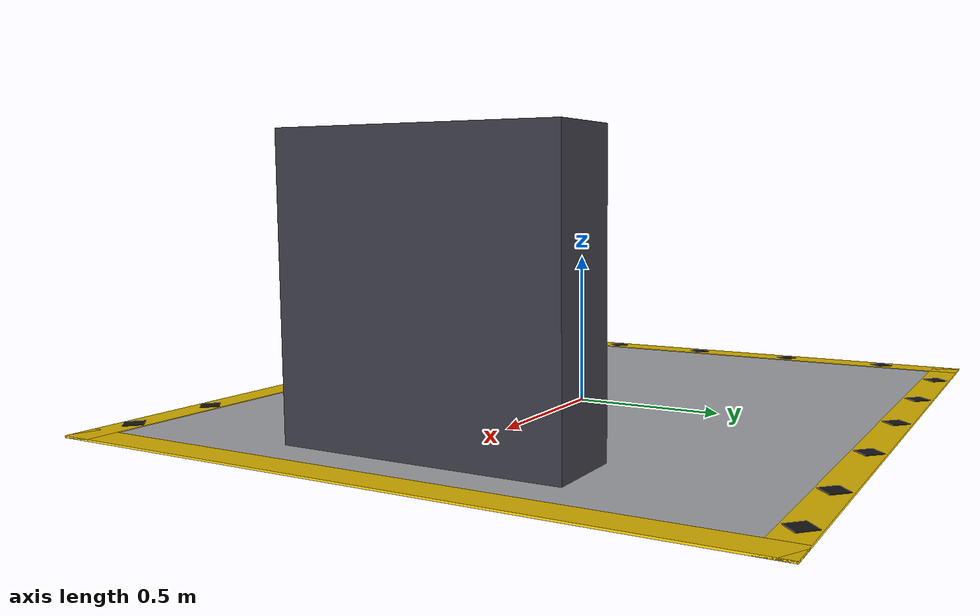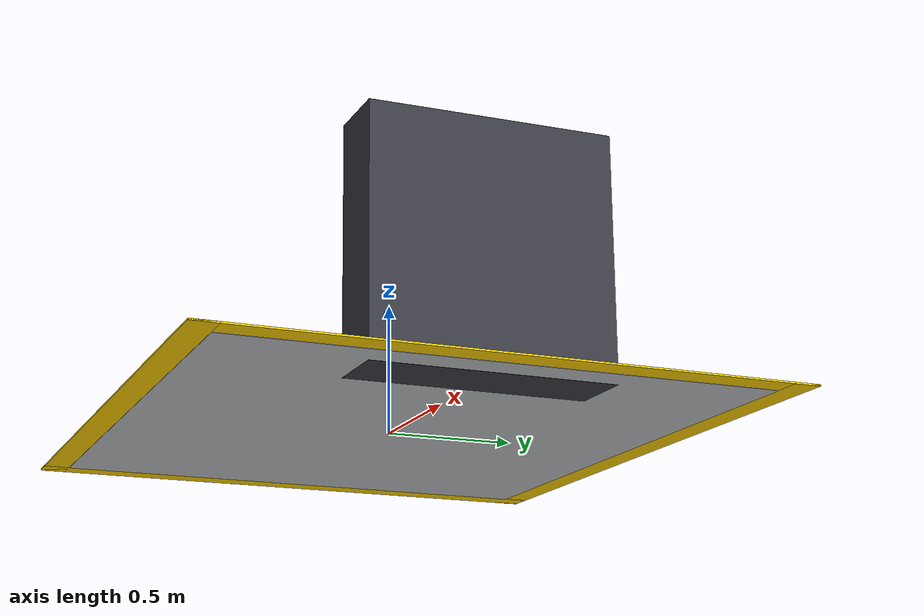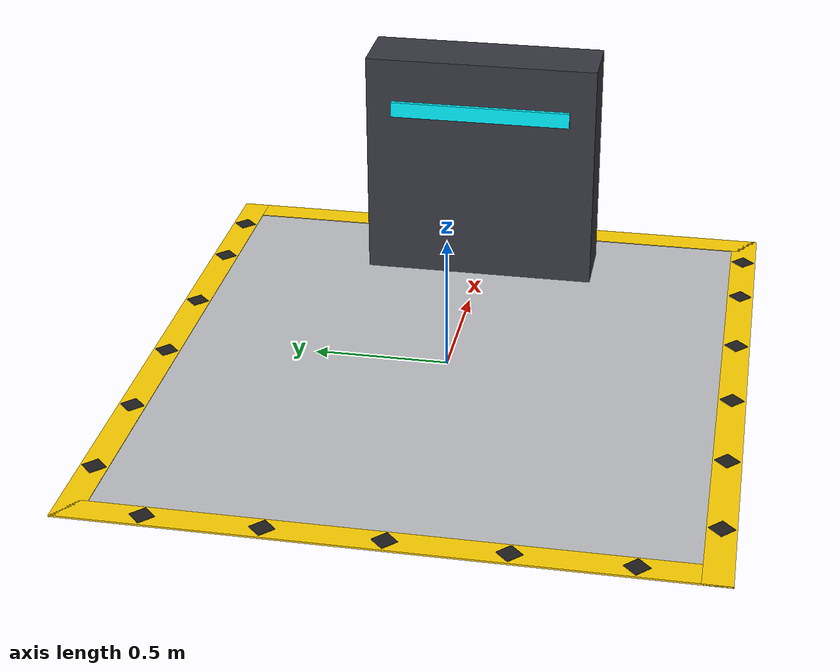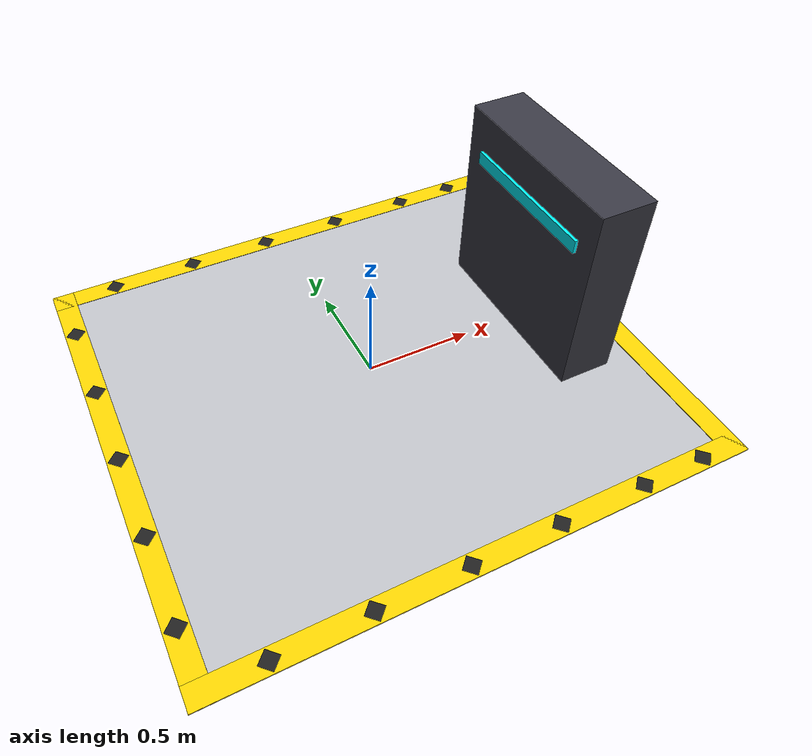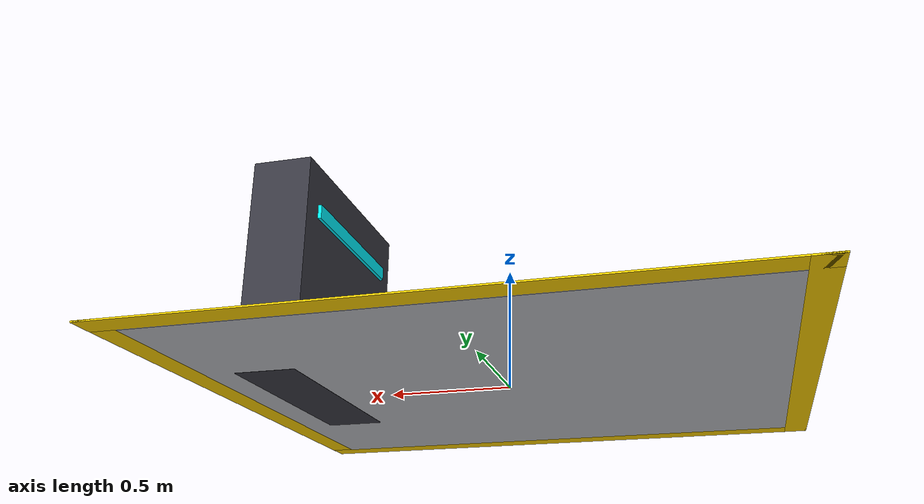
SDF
<?xml version="1.0"?>
<sdf version="1.9">
  <model name="charging_station">
    <static>true</static>
    <link name="pad_link">
      <!-- Main Interior Bay Floor -->
      <visual name="pad_interior">
        <pose>0 0 0.003 0 0 0</pose>
        <geometry><box><size>2.2 2.0 0.005</size></box></geometry>
        <material>
          <ambient>0.68 0.69 0.71 1.0</ambient>
          <diffuse>0.74 0.75 0.77 1.0</diffuse>
        </material>
      </visual>

      <!-- Yellow Base Border Frame -->
      <visual name="base_frame_n"><pose>0 1.05 0.005 0 0 0</pose><geometry><box><size>2.4 0.10 0.006</size></box></geometry><material><ambient>0.95 0.78 0.0 1</ambient><diffuse>1.0 0.82 0.0 1</diffuse></material></visual>
      <visual name="base_frame_s"><pose>0 -1.05 0.005 0 0 0</pose><geometry><box><size>2.4 0.10 0.006</size></box></geometry><material><ambient>0.95 0.78 0.0 1</ambient><diffuse>1.0 0.82 0.0 1</diffuse></material></visual>
      <visual name="base_frame_e"><pose>1.15 0 0.005 0 0 0</pose><geometry><box><size>0.10 2.2 0.006</size></box></geometry><material><ambient>0.95 0.78 0.0 1</ambient><diffuse>1.0 0.82 0.0 1</diffuse></material></visual>
      <visual name="base_frame_w"><pose>-1.15 0 0.005 0 0 0</pose><geometry><box><size>0.10 2.2 0.006</size></box></geometry><material><ambient>0.95 0.78 0.0 1</ambient><diffuse>1.0 0.82 0.0 1</diffuse></material></visual>

      <!-- Black Hazard Stripes at 45° (North Border) -->
      <visual name="hz_n_1"><pose>-0.9 1.05 0.007 0 0 0.7854</pose><geometry><box><size>0.062 0.062 0.006</size></box></geometry><material><ambient>0.08 0.08 0.08 1</ambient><diffuse>0.12 0.12 0.12 1</diffuse></material></visual>
      <visual name="hz_n_2"><pose>-0.5 1.05 0.007 0 0 0.7854</pose><geometry><box><size>0.062 0.062 0.006</size></box></geometry><material><ambient>0.08 0.08 0.08 1</ambient><diffuse>0.12 0.12 0.12 1</diffuse></material></visual>
      <visual name="hz_n_3"><pose>-0.1 1.05 0.007 0 0 0.7854</pose><geometry><box><size>0.062 0.062 0.006</size></box></geometry><material><ambient>0.08 0.08 0.08 1</ambient><diffuse>0.12 0.12 0.12 1</diffuse></material></visual>
      <visual name="hz_n_4"><pose>0.3 1.05 0.007 0 0 0.7854</pose><geometry><box><size>0.062 0.062 0.006</size></box></geometry><material><ambient>0.08 0.08 0.08 1</ambient><diffuse>0.12 0.12 0.12 1</diffuse></material></visual>
      <visual name="hz_n_5"><pose>0.7 1.05 0.007 0 0 0.7854</pose><geometry><box><size>0.062 0.062 0.006</size></box></geometry><material><ambient>0.08 0.08 0.08 1</ambient><diffuse>0.12 0.12 0.12 1</diffuse></material></visual>
      <visual name="hz_n_6"><pose>1.0 1.05 0.007 0 0 0.7854</pose><geometry><box><size>0.062 0.062 0.006</size></box></geometry><material><ambient>0.08 0.08 0.08 1</ambient><diffuse>0.12 0.12 0.12 1</diffuse></material></visual>

      <!-- Black Hazard Stripes at 45° (South Border) -->
      <visual name="hz_s_1"><pose>-0.9 -1.05 0.007 0 0 0.7854</pose><geometry><box><size>0.062 0.062 0.006</size></box></geometry><material><ambient>0.08 0.08 0.08 1</ambient><diffuse>0.12 0.12 0.12 1</diffuse></material></visual>
      <visual name="hz_s_2"><pose>-0.5 -1.05 0.007 0 0 0.7854</pose><geometry><box><size>0.062 0.062 0.006</size></box></geometry><material><ambient>0.08 0.08 0.08 1</ambient><diffuse>0.12 0.12 0.12 1</diffuse></material></visual>
      <visual name="hz_s_3"><pose>-0.1 -1.05 0.007 0 0 0.7854</pose><geometry><box><size>0.062 0.062 0.006</size></box></geometry><material><ambient>0.08 0.08 0.08 1</ambient><diffuse>0.12 0.12 0.12 1</diffuse></material></visual>
      <visual name="hz_s_4"><pose>0.3 -1.05 0.007 0 0 0.7854</pose><geometry><box><size>0.062 0.062 0.006</size></box></geometry><material><ambient>0.08 0.08 0.08 1</ambient><diffuse>0.12 0.12 0.12 1</diffuse></material></visual>
      <visual name="hz_s_5"><pose>0.7 -1.05 0.007 0 0 0.7854</pose><geometry><box><size>0.062 0.062 0.006</size></box></geometry><material><ambient>0.08 0.08 0.08 1</ambient><diffuse>0.12 0.12 0.12 1</diffuse></material></visual>
      <visual name="hz_s_6"><pose>1.0 -1.05 0.007 0 0 0.7854</pose><geometry><box><size>0.062 0.062 0.006</size></box></geometry><material><ambient>0.08 0.08 0.08 1</ambient><diffuse>0.12 0.12 0.12 1</diffuse></material></visual>

      <!-- Black Hazard Stripes at 45° (West Border) -->
      <visual name="hz_w_1"><pose>-1.15 -0.8 0.007 0 0 0.7854</pose><geometry><box><size>0.062 0.062 0.006</size></box></geometry><material><ambient>0.08 0.08 0.08 1</ambient><diffuse>0.12 0.12 0.12 1</diffuse></material></visual>
      <visual name="hz_w_2"><pose>-1.15 -0.4 0.007 0 0 0.7854</pose><geometry><box><size>0.062 0.062 0.006</size></box></geometry><material><ambient>0.08 0.08 0.08 1</ambient><diffuse>0.12 0.12 0.12 1</diffuse></material></visual>
      <visual name="hz_w_3"><pose>-1.15 0.0 0.007 0 0 0.7854</pose><geometry><box><size>0.062 0.062 0.006</size></box></geometry><material><ambient>0.08 0.08 0.08 1</ambient><diffuse>0.12 0.12 0.12 1</diffuse></material></visual>
      <visual name="hz_w_4"><pose>-1.15 0.4 0.007 0 0 0.7854</pose><geometry><box><size>0.062 0.062 0.006</size></box></geometry><material><ambient>0.08 0.08 0.08 1</ambient><diffuse>0.12 0.12 0.12 1</diffuse></material></visual>
      <visual name="hz_w_5"><pose>-1.15 0.8 0.007 0 0 0.7854</pose><geometry><box><size>0.062 0.062 0.006</size></box></geometry><material><ambient>0.08 0.08 0.08 1</ambient><diffuse>0.12 0.12 0.12 1</diffuse></material></visual>

      <!-- Charging Dock Unit with Status Light Indicator -->
      <visual name="charger_base">
        <pose>0.85 0 0.45 0 0 0</pose>
        <geometry><box><size>0.25 0.90 0.90</size></box></geometry>
        <material>
          <ambient>0.15 0.15 0.18 1.0</ambient>
          <diffuse>0.22 0.22 0.26 1.0</diffuse>
        </material>
      </visual>
      <visual name="charger_led_strip">
        <pose>0.72 0 0.70 0 0 0</pose>
        <geometry><box><size>0.02 0.70 0.06</size></box></geometry>
        <material>
          <ambient>0.0 0.8 0.9 1.0</ambient>
          <diffuse>0.0 0.95 1.0 1.0</diffuse>
        </material>
      </visual>
    </link>
  </model>
</sdf>
